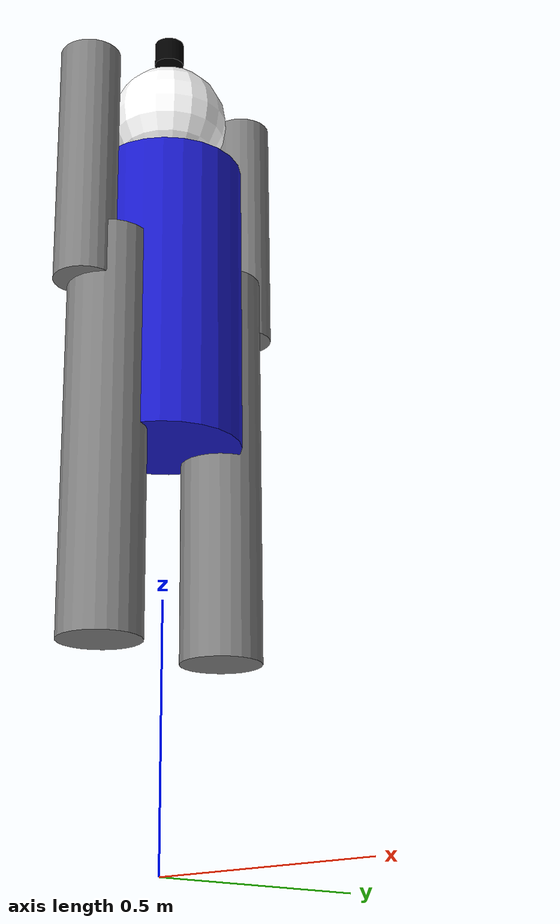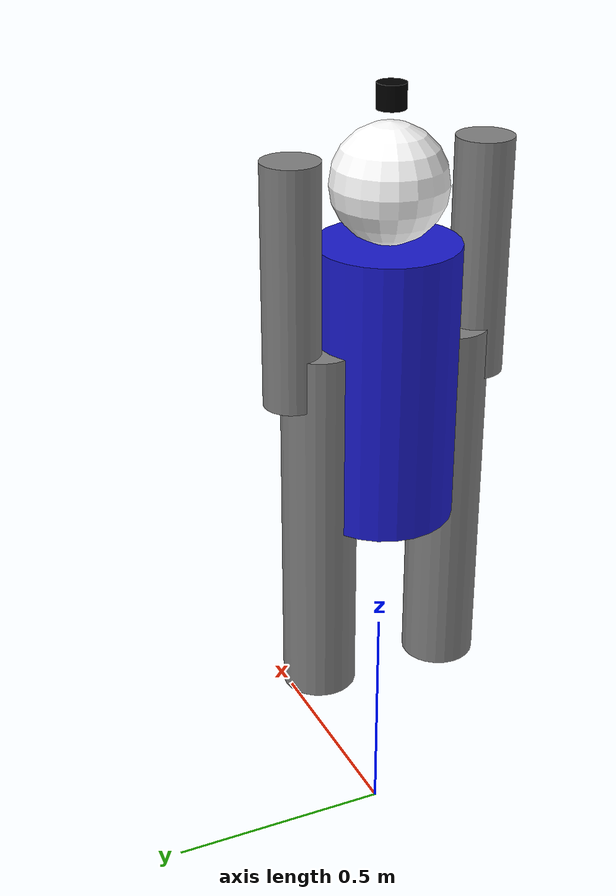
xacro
<?xml version="1.0"?>
<robot xmlns:xacro="http://www.ros.org/wiki/xacro" name="humanoid_sensors">

    <!--
      This URDF extends the base humanoid model to include a simulated LiDAR sensor.
      It demonstrates how to integrate sensor definitions within the robot description.
    -->

    <!-- Include the base humanoid model -->
    <xacro:include filename="$(find robotics_book_code)/module2-the-digital-twin/shared/humanoid_base.urdf.xacro" />

    <!-- Define a new link for the LiDAR sensor -->
    <link name="lidar_link">
      <visual>
        <geometry>
          <cylinder radius="0.03" length="0.05"/>
        </geometry>
        <material name="black"/>
      </visual>
      <collision>
        <geometry>
          <cylinder radius="0.03" length="0.05"/>
        </geometry>
      </collision>
      <inertial>
        <mass value="0.1"/>
        <inertia ixx="0.0001" ixy="0" ixz="0" iyy="0.0001" iyz="0" izz="0.0001"/>
      </inertial>
    </link>

    <!-- Attach the LiDAR to the head link -->
    <joint name="head_to_lidar" type="fixed">
      <parent link="head"/>
      <child link="lidar_link"/>
      <origin xyz="0 0 0.17" rpy="0 0 0"/> <!-- Positioned on top of the head -->
    </joint>

    <!-- Gazebo sensor plugin for LiDAR -->
    <gazebo reference="lidar_link">
      <sensor name="lidar_sensor" type="gpu_lidar">
        <always_on>true</always_on>
        <update_rate>10.0</update_rate>
        <visualize>true</visualize>
        <topic>lidar_scan</topic>
        <ray>
          <scan>
            <horizontal>
              <samples>640</samples>
              <resolution>1</resolution>
              <min_angle>-2.2</min_angle>
              <max_angle>2.2</max_angle>
            </horizontal>
            <vertical>
              <samples>1</samples>
              <resolution>1</resolution>
              <min_angle>0</min_angle>
              <max_angle>0</max_angle>
            </vertical>
          </scan>
          <range>
            <min>0.1</min>
            <max>10.0</max>
            <resolution>0.01</resolution>
          </range>
        </ray>
        <plugin name="ignition::gazebo::sensors::GpuLidar" filename="ignition-gazebo-sensors">
          <topic>lidar_scan</topic>
          <frame_name>lidar_link</frame_name>
        </plugin>
      </sensor>
    </gazebo>

    <material name="black">
      <color rgba="0 0 0 1"/>
    </material>

</robot>

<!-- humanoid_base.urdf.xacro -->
<robot xmlns:xacro="http://www.ros.org/wiki/xacro" name="humanoid_base">

  <!-- Constants -->
  <xacro:property name="PI" value="3.1415926535897931"/>
  <xacro:property name="torso_len" value="0.6"/>
  <xacro:property name="torso_rad" value="0.15"/>
  <xacro:property name="head_rad" value="0.12"/>
  <xacro:property name="leg_len" value="0.8"/>
  <xacro:property name="leg_rad" value="0.08"/>
  <xacro:property name="arm_len" value="0.5"/>
  <xacro:property name="arm_rad" value="0.06"/>
  <xacro:property name="foot_len" value="0.2"/>
  <xacro:property name="foot_rad" value="0.1"/>

  <!-- Materials -->
  <material name="grey">
    <color rgba="0.5 0.5 0.5 1"/>
  </material>
  <material name="blue">
    <color rgba="0.1 0.1 0.8 1"/>
  </material>
  <material name="white">
    <color rgba="1.0 1.0 1.0 1"/>
  </material>

  <!-- Base Link -->
  <link name="base_link"/>

  <!-- Torso -->
  <link name="torso">
    <visual>
      <geometry>
        <cylinder length="${torso_len}" radius="${torso_rad}"/>
      </geometry>
      <material name="blue"/>
    </visual>
    <collision>
      <geometry>
        <cylinder length="${torso_len}" radius="${torso_rad}"/>
      </geometry>
    </collision>
    <inertial>
      <mass value="10"/>
      <inertia ixx="1.0" ixy="0" ixz="0" iyy="1.0" iyz="0" izz="0.5"/>
    </inertial>
  </link>
  <joint name="base_to_torso" type="fixed">
    <parent link="base_link"/>
    <child link="torso"/>
    <origin xyz="0 0 ${leg_len + torso_len/2}" rpy="0 0 0"/>
  </joint>

  <!-- Head -->
  <link name="head">
    <visual>
      <geometry>
        <sphere radius="${head_rad}"/>
      </geometry>
      <material name="white"/>
    </visual>
    <collision>
      <geometry>
        <sphere radius="${head_rad}"/>
      </geometry>
    </collision>
    <inertial>
      <mass value="2"/>
      <inertia ixx="0.1" ixy="0" ixz="0" iyy="0.1" iyz="0" izz="0.1"/>
    </inertial>
  </link>
  <joint name="torso_to_head" type="revolute">
    <parent link="torso"/>
    <child link="head"/>
    <origin xyz="0 0 ${torso_len/2 + head_rad}" rpy="0 0 0"/>
    <axis xyz="0 0 1"/>
    <limit lower="-${PI/2}" upper="${PI/2}" effort="10" velocity="1.0"/>
  </joint>

  <!-- Macro for a leg -->
  <xacro:macro name="leg" params="prefix side">
    <link name="${prefix}_${side}_leg">
      <visual>
        <geometry>
          <cylinder length="${leg_len}" radius="${leg_rad}"/>
        </geometry>
        <material name="grey"/>
      </visual>
      <collision>
        <geometry>
          <cylinder length="${leg_len}" radius="${leg_rad}"/>
        </geometry>
      </collision>
      <inertial>
        <mass value="5"/>
        <inertia ixx="0.5" ixy="0" ixz="0" iyy="0.5" iyz="0" izz="0.2"/>
      </inertial>
    </link>
    <joint name="torso_to_${prefix}_${side}_leg" type="revolute">
      <parent link="torso"/>
      <child link="${prefix}_${side}_leg"/>
      <origin xyz="0 ${side*(torso_rad)} -${torso_len/2}" rpy="0 0 0"/>
      <axis xyz="1 0 0"/>
      <limit lower="-${PI/2}" upper="${PI/2}" effort="100" velocity="1.0"/>
    </joint>
  </xacro:macro>

  <!-- Macro for an arm -->
  <xacro:macro name="arm" params="prefix side">
    <link name="${prefix}_${side}_arm">
      <visual>
        <geometry>
          <cylinder length="${arm_len}" radius="${arm_rad}"/>
        </geometry>
        <material name="grey"/>
      </visual>
      <collision>
        <geometry>
          <cylinder length="${arm_len}" radius="${arm_rad}"/>
        </geometry>
      </collision>
      <inertial>
        <mass value="3"/>
        <inertia ixx="0.3" ixy="0" ixz="0" iyy="0.3" iyz="0" izz="0.1"/>
      </inertial>
    </link>
    <joint name="torso_to_${prefix}_${side}_arm" type="revolute">
      <parent link="torso"/>
      <child link="${prefix}_${side}_arm"/>
      <origin xyz="0 ${side*(torso_rad + arm_rad)} ${torso_len/2 - arm_rad}" rpy="0 0 0"/>
      <axis xyz="1 0 0"/>
      <limit lower="-${PI}" upper="${PI}" effort="50" velocity="1.0"/>
    </joint>
  </xacro:macro>

  <!-- Instantiate legs and arms -->
  <xacro:leg prefix="right" side="1"/>
  <xacro:leg prefix="left" side="-1"/>
  <xacro:arm prefix="right" side="1"/>
  <xacro:arm prefix="left" side="-1"/>

</robot>
